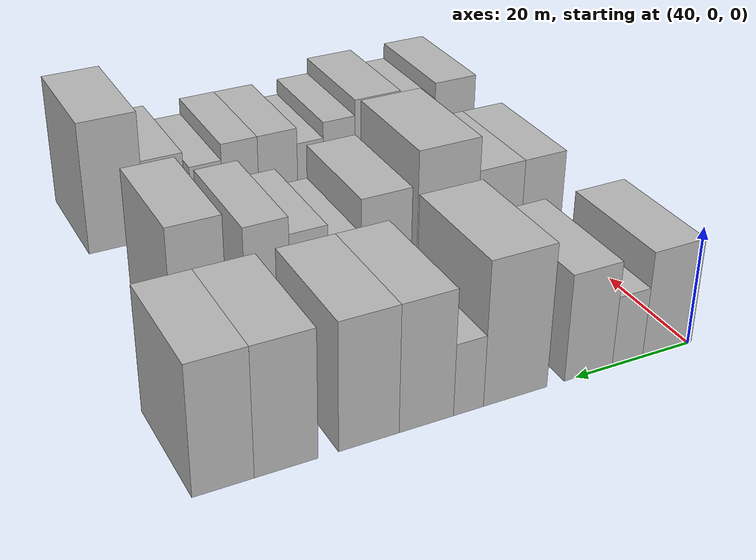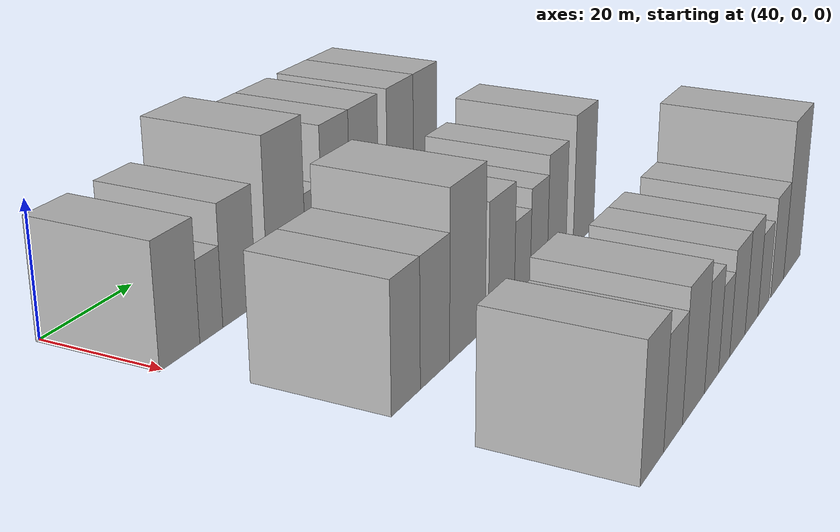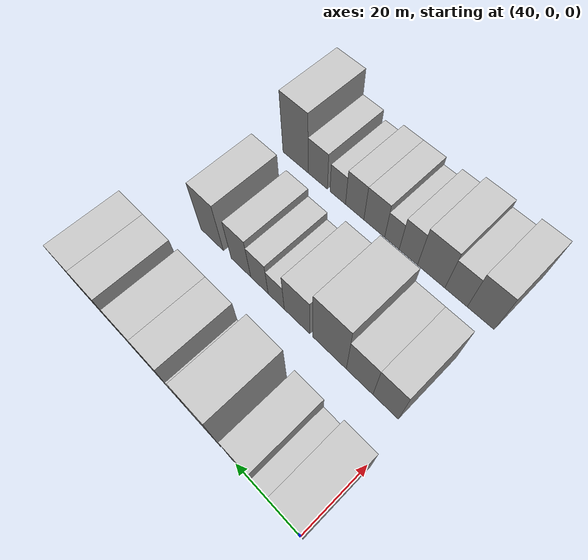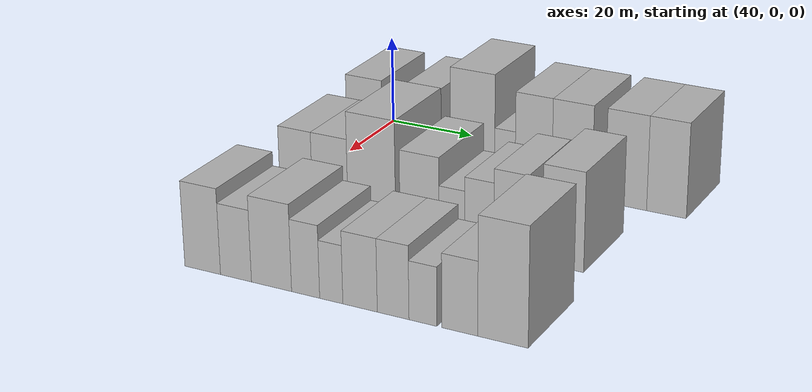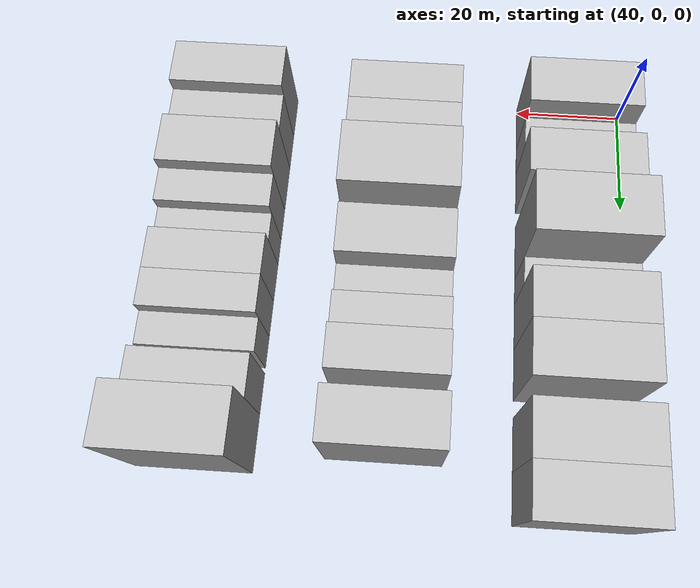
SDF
<sdf version="1.6">
 <world name="default">
  <model name="building_31">
   <static>1</static>
   <pose>50.0000 3.7757 0 0.000000 0.000000 0.000000</pose>
   <link name="link">
    <pose>0 0 9.00 0 0 0</pose>
    <collision name="collision"><geometry><box><size>20.0000 8.9586 18.0000</size></box></geometry></collision>
    <visual name="visual">
     <cast_shadows>0</cast_shadows>
     <geometry><box><size>20.0000 8.9586 18.0000</size></box></geometry>
     <material>
      <script>
       <uri>model://HANNAS_wall/materials/scripts</uri>
       <uri>model://HANNAS_wall/materials/textures</uri>
       <name>vrc/HANNAS_wall</name>
      </script>
     </material>
    </visual>
   </link>
  </model>
  <model name="building_32">
   <static>1</static>
   <pose>50.0000 10.9654 0 0.000000 0.000000 0.000000</pose>
   <link name="link">
    <pose>0 0 6.00 0 0 0</pose>
    <collision name="collision"><geometry><box><size>20.0000 5.4208 12.0000</size></box></geometry></collision>
    <visual name="visual">
     <cast_shadows>0</cast_shadows>
     <geometry><box><size>20.0000 5.4208 12.0000</size></box></geometry>
     <material>
      <script>
       <uri>model://HANNAS_wall/materials/scripts</uri>
       <uri>model://HANNAS_wall/materials/textures</uri>
       <name>vrc/HANNAS_wall</name>
      </script>
     </material>
    </visual>
   </link>
  </model>
  <model name="building_33">
   <static>1</static>
   <pose>50.0000 17.8217 0 0.000000 0.000000 0.000000</pose>
   <link name="link">
    <pose>0 0 9.00 0 0 0</pose>
    <collision name="collision"><geometry><box><size>20.0000 8.2917 18.0000</size></box></geometry></collision>
    <visual name="visual">
     <cast_shadows>0</cast_shadows>
     <geometry><box><size>20.0000 8.2917 18.0000</size></box></geometry>
     <material>
      <script>
       <uri>model://HANNAS_wall/materials/scripts</uri>
       <uri>model://HANNAS_wall/materials/textures</uri>
       <name>vrc/HANNAS_wall</name>
      </script>
     </material>
    </visual>
   </link>
  </model>
  <model name="building_34">
   <static>1</static>
   <pose>50.0000 30.2291 0 0.000000 0.000000 0.000000</pose>
   <link name="link">
    <pose>0 0 12.00 0 0 0</pose>
    <collision name="collision"><geometry><box><size>20.0000 10.5231 24.0000</size></box></geometry></collision>
    <visual name="visual">
     <cast_shadows>0</cast_shadows>
     <geometry><box><size>20.0000 10.5231 24.0000</size></box></geometry>
     <material>
      <script>
       <uri>model://HANNAS_wall/materials/scripts</uri>
       <uri>model://HANNAS_wall/materials/textures</uri>
       <name>vrc/HANNAS_wall</name>
      </script>
     </material>
    </visual>
   </link>
  </model>
  <model name="building_35">
   <static>1</static>
   <pose>50.0000 37.9034 0 0.000000 0.000000 0.000000</pose>
   <link name="link">
    <pose>0 0 6.00 0 0 0</pose>
    <collision name="collision"><geometry><box><size>20.0000 4.8255 12.0000</size></box></geometry></collision>
    <visual name="visual">
     <cast_shadows>0</cast_shadows>
     <geometry><box><size>20.0000 4.8255 12.0000</size></box></geometry>
     <material>
      <script>
       <uri>model://HANNAS_wall/materials/scripts</uri>
       <uri>model://HANNAS_wall/materials/textures</uri>
       <name>vrc/HANNAS_wall</name>
      </script>
     </material>
    </visual>
   </link>
  </model>
  <model name="building_36">
   <static>1</static>
   <pose>50.0000 44.5834 0 0.000000 0.000000 0.000000</pose>
   <link name="link">
    <pose>0 0 10.50 0 0 0</pose>
    <collision name="collision"><geometry><box><size>20.0000 8.5345 21.0000</size></box></geometry></collision>
    <visual name="visual">
     <cast_shadows>0</cast_shadows>
     <geometry><box><size>20.0000 8.5345 21.0000</size></box></geometry>
     <material>
      <script>
       <uri>model://HANNAS_wall/materials/scripts</uri>
       <uri>model://HANNAS_wall/materials/textures</uri>
       <name>vrc/HANNAS_wall</name>
      </script>
     </material>
    </visual>
   </link>
  </model>
  <model name="building_37">
   <static>1</static>
   <pose>50.0000 53.4414 0 0.000000 0.000000 0.000000</pose>
   <link name="link">
    <pose>0 0 10.50 0 0 0</pose>
    <collision name="collision"><geometry><box><size>20.0000 9.1814 21.0000</size></box></geometry></collision>
    <visual name="visual">
     <cast_shadows>0</cast_shadows>
     <geometry><box><size>20.0000 9.1814 21.0000</size></box></geometry>
     <material>
      <script>
       <uri>model://HANNAS_wall/materials/scripts</uri>
       <uri>model://HANNAS_wall/materials/textures</uri>
       <name>vrc/HANNAS_wall</name>
      </script>
     </material>
    </visual>
   </link>
  </model>
  <model name="building_38">
   <static>1</static>
   <pose>50.0000 65.6423 0 0.000000 0.000000 0.000000</pose>
   <link name="link">
    <pose>0 0 10.50 0 0 0</pose>
    <collision name="collision"><geometry><box><size>20.0000 9.2204 21.0000</size></box></geometry></collision>
    <visual name="visual">
     <cast_shadows>0</cast_shadows>
     <geometry><box><size>20.0000 9.2204 21.0000</size></box></geometry>
     <material>
      <script>
       <uri>model://HANNAS_wall/materials/scripts</uri>
       <uri>model://HANNAS_wall/materials/textures</uri>
       <name>vrc/HANNAS_wall</name>
      </script>
     </material>
    </visual>
   </link>
  </model>
  <model name="building_39">
   <static>1</static>
   <pose>50.0000 74.6010 0 0.000000 0.000000 0.000000</pose>
   <link name="link">
    <pose>0 0 10.50 0 0 0</pose>
    <collision name="collision"><geometry><box><size>20.0000 8.6968 21.0000</size></box></geometry></collision>
    <visual name="visual">
     <cast_shadows>0</cast_shadows>
     <geometry><box><size>20.0000 8.6968 21.0000</size></box></geometry>
     <material>
      <script>
       <uri>model://HANNAS_wall/materials/scripts</uri>
       <uri>model://HANNAS_wall/materials/textures</uri>
       <name>vrc/HANNAS_wall</name>
      </script>
     </material>
    </visual>
   </link>
  </model>
  <model name="building_106">
   <static>1</static>
   <pose>82.0000 5.7378 0 0.000000 0.000000 0.000000</pose>
   <link name="link">
    <pose>0 0 9.00 0 0 0</pose>
    <collision name="collision"><geometry><box><size>20.0000 7.7158 18.0000</size></box></geometry></collision>
    <visual name="visual">
     <cast_shadows>0</cast_shadows>
     <geometry><box><size>20.0000 7.7158 18.0000</size></box></geometry>
     <material>
      <script>
       <uri>model://HANNAS_wall/materials/scripts</uri>
       <uri>model://HANNAS_wall/materials/textures</uri>
       <name>vrc/HANNAS_wall</name>
      </script>
     </material>
    </visual>
   </link>
  </model>
  <model name="building_107">
   <static>1</static>
   <pose>82.0000 13.7709 0 0.000000 0.000000 0.000000</pose>
   <link name="link">
    <pose>0 0 9.00 0 0 0</pose>
    <collision name="collision"><geometry><box><size>20.0000 8.3504 18.0000</size></box></geometry></collision>
    <visual name="visual">
     <cast_shadows>0</cast_shadows>
     <geometry><box><size>20.0000 8.3504 18.0000</size></box></geometry>
     <material>
      <script>
       <uri>model://HANNAS_wall/materials/scripts</uri>
       <uri>model://HANNAS_wall/materials/textures</uri>
       <name>vrc/HANNAS_wall</name>
      </script>
     </material>
    </visual>
   </link>
  </model>
  <model name="building_108">
   <static>1</static>
   <pose>82.0000 23.4504 0 0.000000 0.000000 0.000000</pose>
   <link name="link">
    <pose>0 0 12.00 0 0 0</pose>
    <collision name="collision"><geometry><box><size>20.0000 11.0087 24.0000</size></box></geometry></collision>
    <visual name="visual">
     <cast_shadows>0</cast_shadows>
     <geometry><box><size>20.0000 11.0087 24.0000</size></box></geometry>
     <material>
      <script>
       <uri>model://HANNAS_wall/materials/scripts</uri>
       <uri>model://HANNAS_wall/materials/textures</uri>
       <name>vrc/HANNAS_wall</name>
      </script>
     </material>
    </visual>
   </link>
  </model>
  <model name="building_109">
   <static>1</static>
   <pose>82.0000 34.3567 0 0.000000 0.000000 0.000000</pose>
   <link name="link">
    <pose>0 0 9.00 0 0 0</pose>
    <collision name="collision"><geometry><box><size>20.0000 8.8040 18.0000</size></box></geometry></collision>
    <visual name="visual">
     <cast_shadows>0</cast_shadows>
     <geometry><box><size>20.0000 8.8040 18.0000</size></box></geometry>
     <material>
      <script>
       <uri>model://HANNAS_wall/materials/scripts</uri>
       <uri>model://HANNAS_wall/materials/textures</uri>
       <name>vrc/HANNAS_wall</name>
      </script>
     </material>
    </visual>
   </link>
  </model>
  <model name="building_110">
   <static>1</static>
   <pose>82.0000 41.5994 0 0.000000 0.000000 0.000000</pose>
   <link name="link">
    <pose>0 0 6.00 0 0 0</pose>
    <collision name="collision"><geometry><box><size>20.0000 5.6814 12.0000</size></box></geometry></collision>
    <visual name="visual">
     <cast_shadows>0</cast_shadows>
     <geometry><box><size>20.0000 5.6814 12.0000</size></box></geometry>
     <material>
      <script>
       <uri>model://HANNAS_wall/materials/scripts</uri>
       <uri>model://HANNAS_wall/materials/textures</uri>
       <name>vrc/HANNAS_wall</name>
      </script>
     </material>
    </visual>
   </link>
  </model>
  <model name="building_111">
   <static>1</static>
   <pose>82.0000 47.6321 0 0.000000 0.000000 0.000000</pose>
   <link name="link">
    <pose>0 0 7.50 0 0 0</pose>
    <collision name="collision"><geometry><box><size>20.0000 6.3839 15.0000</size></box></geometry></collision>
    <visual name="visual">
     <cast_shadows>0</cast_shadows>
     <geometry><box><size>20.0000 6.3839 15.0000</size></box></geometry>
     <material>
      <script>
       <uri>model://HANNAS_wall/materials/scripts</uri>
       <uri>model://HANNAS_wall/materials/textures</uri>
       <name>vrc/HANNAS_wall</name>
      </script>
     </material>
    </visual>
   </link>
  </model>
  <model name="building_112">
   <static>1</static>
   <pose>82.0000 54.5135 0 0.000000 0.000000 0.000000</pose>
   <link name="link">
    <pose>0 0 9.00 0 0 0</pose>
    <collision name="collision"><geometry><box><size>20.0000 7.3790 18.0000</size></box></geometry></collision>
    <visual name="visual">
     <cast_shadows>0</cast_shadows>
     <geometry><box><size>20.0000 7.3790 18.0000</size></box></geometry>
     <material>
      <script>
       <uri>model://HANNAS_wall/materials/scripts</uri>
       <uri>model://HANNAS_wall/materials/textures</uri>
       <name>vrc/HANNAS_wall</name>
      </script>
     </material>
    </visual>
   </link>
  </model>
  <model name="building_113">
   <static>1</static>
   <pose>82.0000 65.5983 0 0.000000 0.000000 0.000000</pose>
   <link name="link">
    <pose>0 0 10.50 0 0 0</pose>
    <collision name="collision"><geometry><box><size>20.0000 8.7905 21.0000</size></box></geometry></collision>
    <visual name="visual">
     <cast_shadows>0</cast_shadows>
     <geometry><box><size>20.0000 8.7905 21.0000</size></box></geometry>
     <material>
      <script>
       <uri>model://HANNAS_wall/materials/scripts</uri>
       <uri>model://HANNAS_wall/materials/textures</uri>
       <name>vrc/HANNAS_wall</name>
      </script>
     </material>
    </visual>
   </link>
  </model>
  <model name="building_176">
   <static>1</static>
   <pose>114.0000 4.0639 0 0.000000 0.000000 0.000000</pose>
   <link name="link">
    <pose>0 0 9.00 0 0 0</pose>
    <collision name="collision"><geometry><box><size>20.0000 8.1900 18.0000</size></box></geometry></collision>
    <visual name="visual">
     <cast_shadows>0</cast_shadows>
     <geometry><box><size>20.0000 8.1900 18.0000</size></box></geometry>
     <material>
      <script>
       <uri>model://HANNAS_wall/materials/scripts</uri>
       <uri>model://HANNAS_wall/materials/textures</uri>
       <name>vrc/HANNAS_wall</name>
      </script>
     </material>
    </visual>
   </link>
  </model>
  <model name="building_177">
   <static>1</static>
   <pose>114.0000 11.6602 0 0.000000 0.000000 0.000000</pose>
   <link name="link">
    <pose>0 0 7.50 0 0 0</pose>
    <collision name="collision"><geometry><box><size>20.0000 7.0025 15.0000</size></box></geometry></collision>
    <visual name="visual">
     <cast_shadows>0</cast_shadows>
     <geometry><box><size>20.0000 7.0025 15.0000</size></box></geometry>
     <material>
      <script>
       <uri>model://HANNAS_wall/materials/scripts</uri>
       <uri>model://HANNAS_wall/materials/textures</uri>
       <name>vrc/HANNAS_wall</name>
      </script>
     </material>
    </visual>
   </link>
  </model>
  <model name="building_178">
   <static>1</static>
   <pose>114.0000 19.6160 0 0.000000 0.000000 0.000000</pose>
   <link name="link">
    <pose>0 0 9.00 0 0 0</pose>
    <collision name="collision"><geometry><box><size>20.0000 8.9092 18.0000</size></box></geometry></collision>
    <visual name="visual">
     <cast_shadows>0</cast_shadows>
     <geometry><box><size>20.0000 8.9092 18.0000</size></box></geometry>
     <material>
      <script>
       <uri>model://HANNAS_wall/materials/scripts</uri>
       <uri>model://HANNAS_wall/materials/textures</uri>
       <name>vrc/HANNAS_wall</name>
      </script>
     </material>
    </visual>
   </link>
  </model>
  <model name="building_179">
   <static>1</static>
   <pose>114.0000 27.1351 0 0.000000 0.000000 0.000000</pose>
   <link name="link">
    <pose>0 0 7.50 0 0 0</pose>
    <collision name="collision"><geometry><box><size>20.0000 6.1289 15.0000</size></box></geometry></collision>
    <visual name="visual">
     <cast_shadows>0</cast_shadows>
     <geometry><box><size>20.0000 6.1289 15.0000</size></box></geometry>
     <material>
      <script>
       <uri>model://HANNAS_wall/materials/scripts</uri>
       <uri>model://HANNAS_wall/materials/textures</uri>
       <name>vrc/HANNAS_wall</name>
      </script>
     </material>
    </visual>
   </link>
  </model>
  <model name="building_180">
   <static>1</static>
   <pose>114.0000 32.6974 0 0.000000 0.000000 0.000000</pose>
   <link name="link">
    <pose>0 0 6.00 0 0 0</pose>
    <collision name="collision"><geometry><box><size>20.0000 4.9958 12.0000</size></box></geometry></collision>
    <visual name="visual">
     <cast_shadows>0</cast_shadows>
     <geometry><box><size>20.0000 4.9958 12.0000</size></box></geometry>
     <material>
      <script>
       <uri>model://HANNAS_wall/materials/scripts</uri>
       <uri>model://HANNAS_wall/materials/textures</uri>
       <name>vrc/HANNAS_wall</name>
      </script>
     </material>
    </visual>
   </link>
  </model>
  <model name="building_181">
   <static>1</static>
   <pose>114.0000 38.8533 0 0.000000 0.000000 0.000000</pose>
   <link name="link">
    <pose>0 0 7.50 0 0 0</pose>
    <collision name="collision"><geometry><box><size>20.0000 7.3161 15.0000</size></box></geometry></collision>
    <visual name="visual">
     <cast_shadows>0</cast_shadows>
     <geometry><box><size>20.0000 7.3161 15.0000</size></box></geometry>
     <material>
      <script>
       <uri>model://HANNAS_wall/materials/scripts</uri>
       <uri>model://HANNAS_wall/materials/textures</uri>
       <name>vrc/HANNAS_wall</name>
      </script>
     </material>
    </visual>
   </link>
  </model>
  <model name="building_182">
   <static>1</static>
   <pose>114.0000 45.8208 0 0.000000 0.000000 0.000000</pose>
   <link name="link">
    <pose>0 0 7.50 0 0 0</pose>
    <collision name="collision"><geometry><box><size>20.0000 6.6189 15.0000</size></box></geometry></collision>
    <visual name="visual">
     <cast_shadows>0</cast_shadows>
     <geometry><box><size>20.0000 6.6189 15.0000</size></box></geometry>
     <material>
      <script>
       <uri>model://HANNAS_wall/materials/scripts</uri>
       <uri>model://HANNAS_wall/materials/textures</uri>
       <name>vrc/HANNAS_wall</name>
      </script>
     </material>
    </visual>
   </link>
  </model>
  <model name="building_183">
   <static>1</static>
   <pose>114.0000 52.0070 0 0.000000 0.000000 0.000000</pose>
   <link name="link">
    <pose>0 0 6.00 0 0 0</pose>
    <collision name="collision"><geometry><box><size>20.0000 5.7537 12.0000</size></box></geometry></collision>
    <visual name="visual">
     <cast_shadows>0</cast_shadows>
     <geometry><box><size>20.0000 5.7537 12.0000</size></box></geometry>
     <material>
      <script>
       <uri>model://HANNAS_wall/materials/scripts</uri>
       <uri>model://HANNAS_wall/materials/textures</uri>
       <name>vrc/HANNAS_wall</name>
      </script>
     </material>
    </visual>
   </link>
  </model>
  <model name="building_184">
   <static>1</static>
   <pose>114.0000 59.5170 0 0.000000 0.000000 0.000000</pose>
   <link name="link">
    <pose>0 0 7.50 0 0 0</pose>
    <collision name="collision"><geometry><box><size>20.0000 7.2662 15.0000</size></box></geometry></collision>
    <visual name="visual">
     <cast_shadows>0</cast_shadows>
     <geometry><box><size>20.0000 7.2662 15.0000</size></box></geometry>
     <material>
      <script>
       <uri>model://HANNAS_wall/materials/scripts</uri>
       <uri>model://HANNAS_wall/materials/textures</uri>
       <name>vrc/HANNAS_wall</name>
      </script>
     </material>
    </visual>
   </link>
  </model>
  <model name="building_185">
   <static>1</static>
   <pose>114.0000 68.1428 0 0.000000 0.000000 0.000000</pose>
   <link name="link">
    <pose>0 0 12.00 0 0 0</pose>
    <collision name="collision"><geometry><box><size>20.0000 9.9853 24.0000</size></box></geometry></collision>
    <visual name="visual">
     <cast_shadows>0</cast_shadows>
     <geometry><box><size>20.0000 9.9853 24.0000</size></box></geometry>
     <material>
      <script>
       <uri>model://HANNAS_wall/materials/scripts</uri>
       <uri>model://HANNAS_wall/materials/textures</uri>
       <name>vrc/HANNAS_wall</name>
      </script>
     </material>
    </visual>
   </link>
  </model>
 </world>
</sdf>
